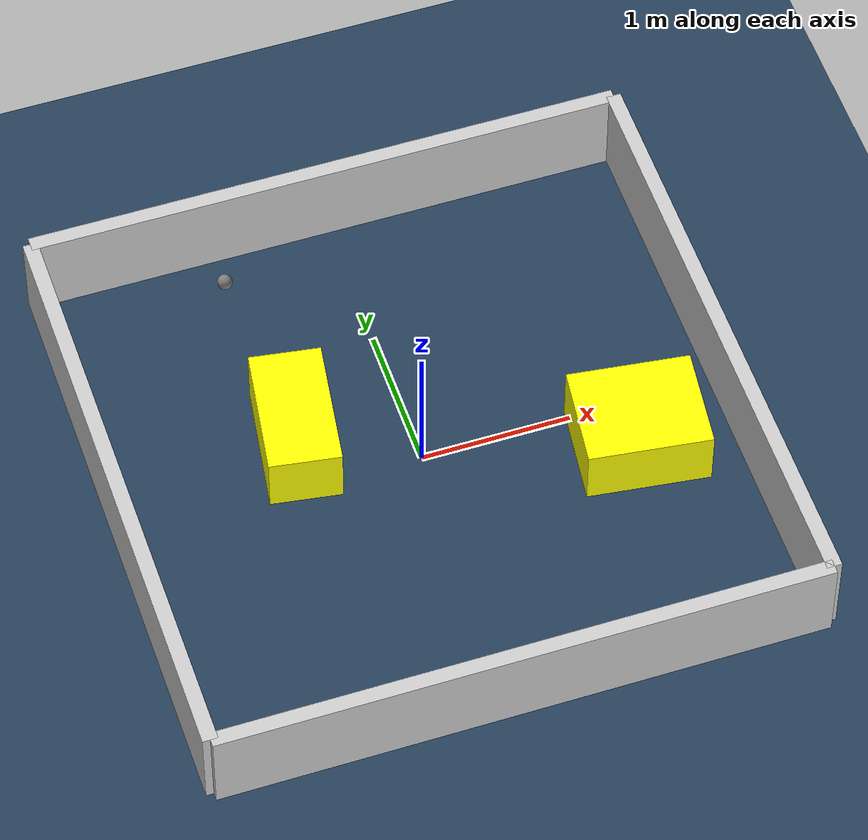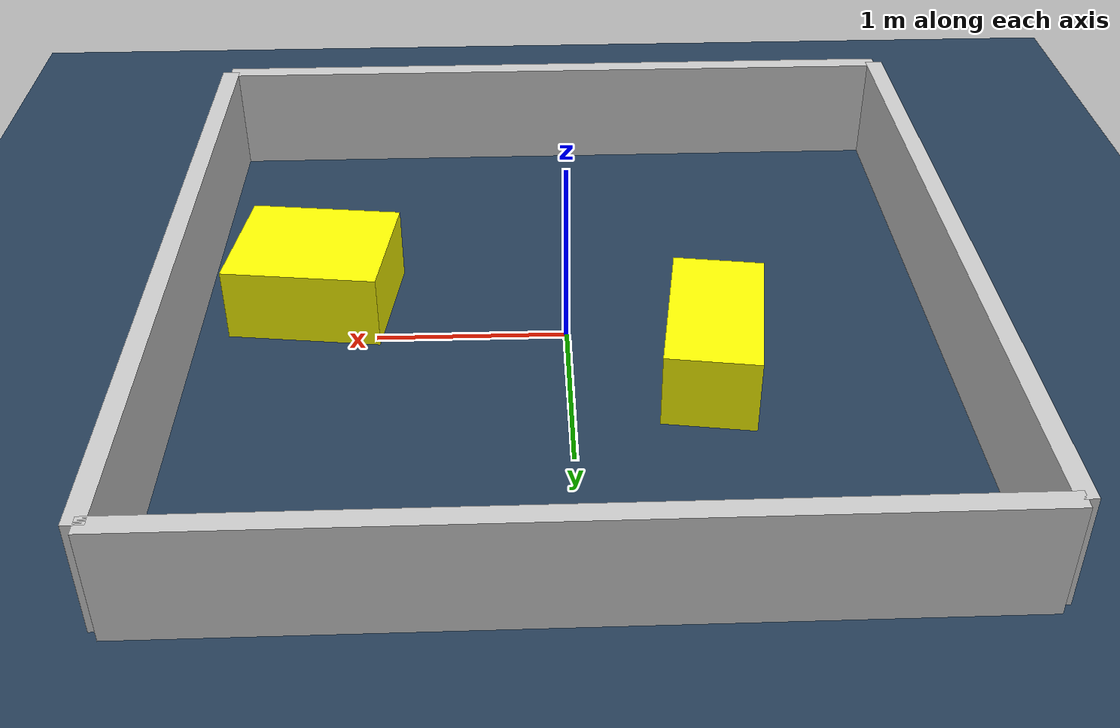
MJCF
<?xml version="1.0" ?>
<mujoco model="generated_environment">
  <option timestep="0.01" integrator="RK4" cone="elliptic"/>
  <default>
    <geom density="1"/>
  </default>
  <asset>
    <texture builtin="gradient" height="3072" rgb1="0.3 0.5 0.7" rgb2="0 0 0" type="skybox" width="512"/>
    <texture builtin="checker" height="300" mark="edge" markrgb="0.8 0.8 0.8" name="groundplane" rgb1="0.2 0.3 0.4" rgb2="0.1 0.2 0.3" type="2d" width="300"/>
    <material name="groundplane" reflectance="0.2" texrepeat="5 5" texture="groundplane" texuniform="true"/>
    <material name="robot" rgba="0.0 1.0 0.0 1"/>
  </asset>
  <worldbody>
    <light dir="0 0 -1" directional="true" pos="0 0 1.5"/>
    <geom condim="4" friction="1.0 0.005 0.001" material="groundplane" name="floor" size="0 0 0.05" type="plane"/>
    <body name="walls">
      <geom name="wall_1" condim="4" pos="-2.0 0.0 0.3" rgba="0.800000011920929 0.800000011920929 0.800000011920929 1.0" size="0.05 2.0 0.3" type="box"/>
      <geom name="wall_2" condim="4" pos="2.0 0.0 0.3" rgba="0.800000011920929 0.800000011920929 0.800000011920929 1.0" size="0.05 2.0 0.3" type="box"/>
      <geom name="wall_3" condim="4" pos="0.0 -2.0 0.3" rgba="0.800000011920929 0.800000011920929 0.800000011920929 1.0" size="2.0 0.05 0.3" type="box"/>
      <geom name="wall_4" condim="4" pos="0.0 2.0 0.3" rgba="0.800000011920929 0.800000011920929 0.800000011920929 1.0" size="2.0 0.05 0.3" type="box"/>
    </body>
    <body name="robot">
      <joint name="joint_x" type="slide" pos="0 0 0" axis="1 0 0"/>
      <joint name="joint_y" type="slide" pos="0 0 0" axis="0 1 0"/>
      <geom name="robot" type="sphere" pos="-0.8174536591066656 1.6154056041894722 0.2" size="0.05" mass="5." friction="1.0 0.005 0.0001" condim="4"/>
      <site name="sensor_ball"/>
    </body>
    <body name="obstacle_1_movable">
      <geom name="obstacle_1_movable" condim="4" pos="1.3417180872118042 -0.3368766756349595 0.2" euler="0 0 82.65001125648963" friction="1.0 0.005 0.001" rgba="1 1 0 1" size="0.342107018034111 0.40690890962359444 0.2" type="box" mass="0.1"/>
      <joint type="free"/>
    </body>
    <body name="obstacle_2_movable">
      <geom name="obstacle_2_movable" condim="4" pos="-0.7316638813260719 0.3553699951344571 0.2" euler="0 0 351.2478511258535" friction="1.0 0.005 0.001" rgba="1 1 0 1" size="0.23680009661542153 0.44068609139945525 0.2" type="box" mass="0.1"/>
      <joint type="free"/>
    </body>
  </worldbody>
  <actuator>
    <motor name="actuator_x" joint="joint_x" gear="1" ctrlrange="-1 1"/>
    <motor name="actuator_y" joint="joint_y" gear="1" ctrlrange="-1 1"/>
  </actuator>
</mujoco>
